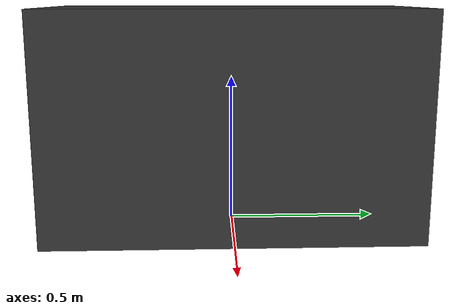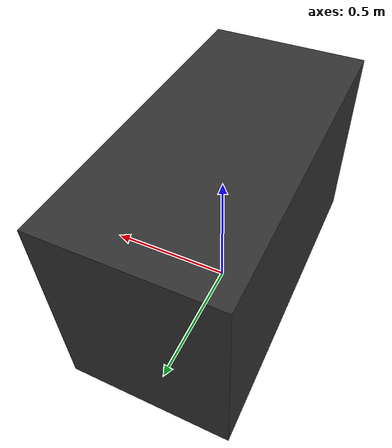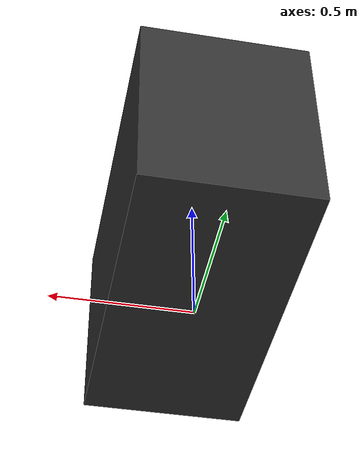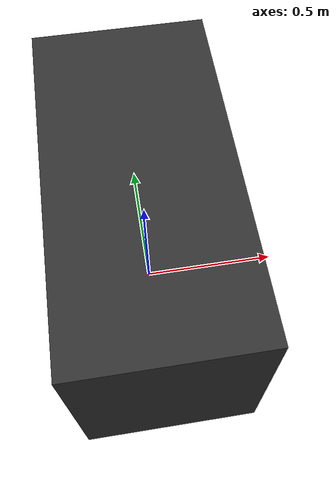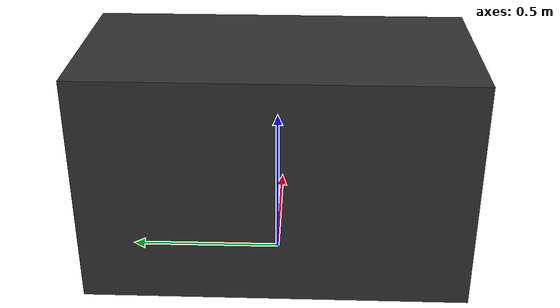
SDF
<?xml version='1.0'?>
<sdf version='1.6'>
    <model name='robot_table_box'>
        <pose>0.0 0.0 0.3683 0 0 0</pose>
        <link name='box_link'>
            <inertial>
                <inertia>
                    <ixx>0.16666</ixx>
                    <ixy>0</ixy>
                    <ixz>0</ixz>
                    <iyy>0.16666</iyy>
                    <iyz>0</iyz>
                    <izz>0.16666</izz>
                </inertia>
                <mass>1</mass>
                <pose>0 0 0 0 0 0</pose>
            </inertial>
            <collision name='box_collision'>
                <geometry>
                    <box>
                        <size>0.6 1.2192 0.7366</size>
                    </box>
                </geometry>
                <surface>
                    <friction>
                        <ode />
                    </friction>
                    <bounce />
                    <contact />
                </surface>
            </collision>
            <visual name='box_visual'>
                <geometry>
                    <box>
                        <size>0.6 1.2192 0.7366</size>
                    </box>
                </geometry>
                <material>
                    <ambient>0.2 0.2 0.2 1</ambient>
                    <diffuse>0.2 0.2 0.2 1</diffuse>
                    <specular>0.2 0.2 0.2 1</specular>
                </material>
            </visual>
            <pose>0 0 0 0 0 0</pose>
            <enable_wind>false</enable_wind>
        </link>
        <static>false</static>
        <self_collide>false</self_collide>
    </model>
</sdf>
